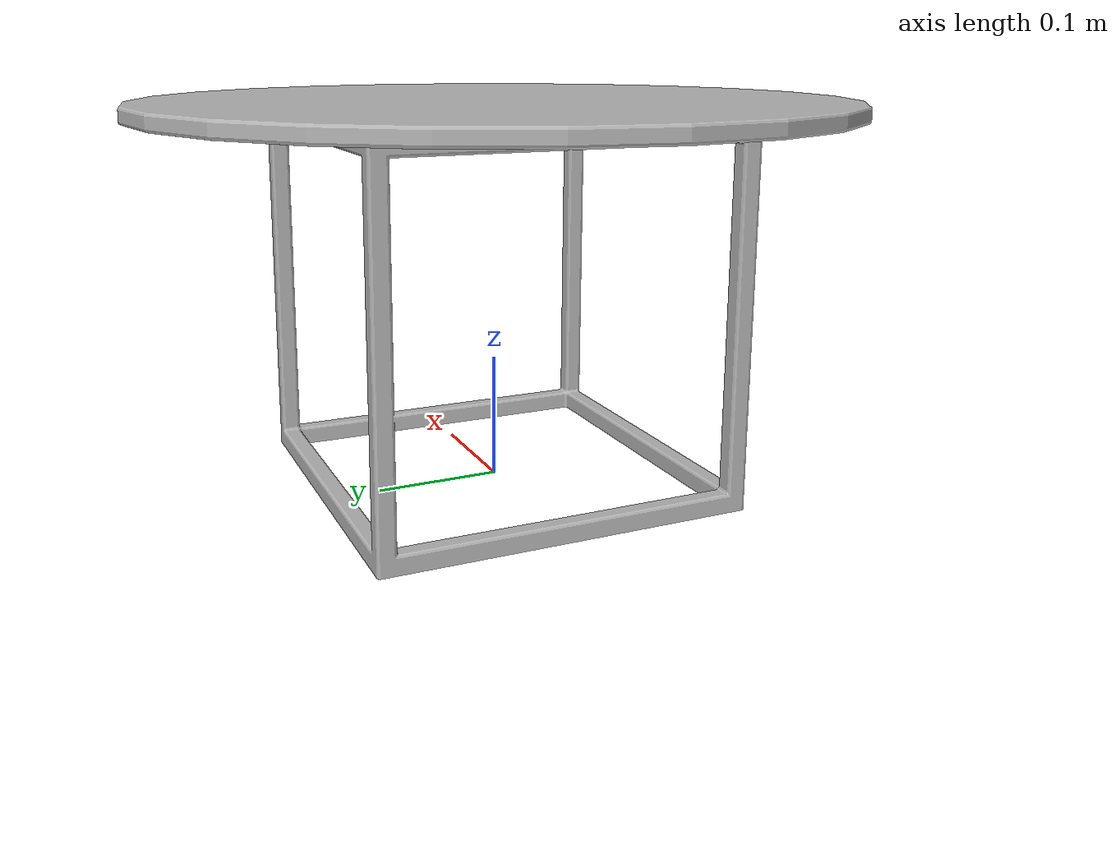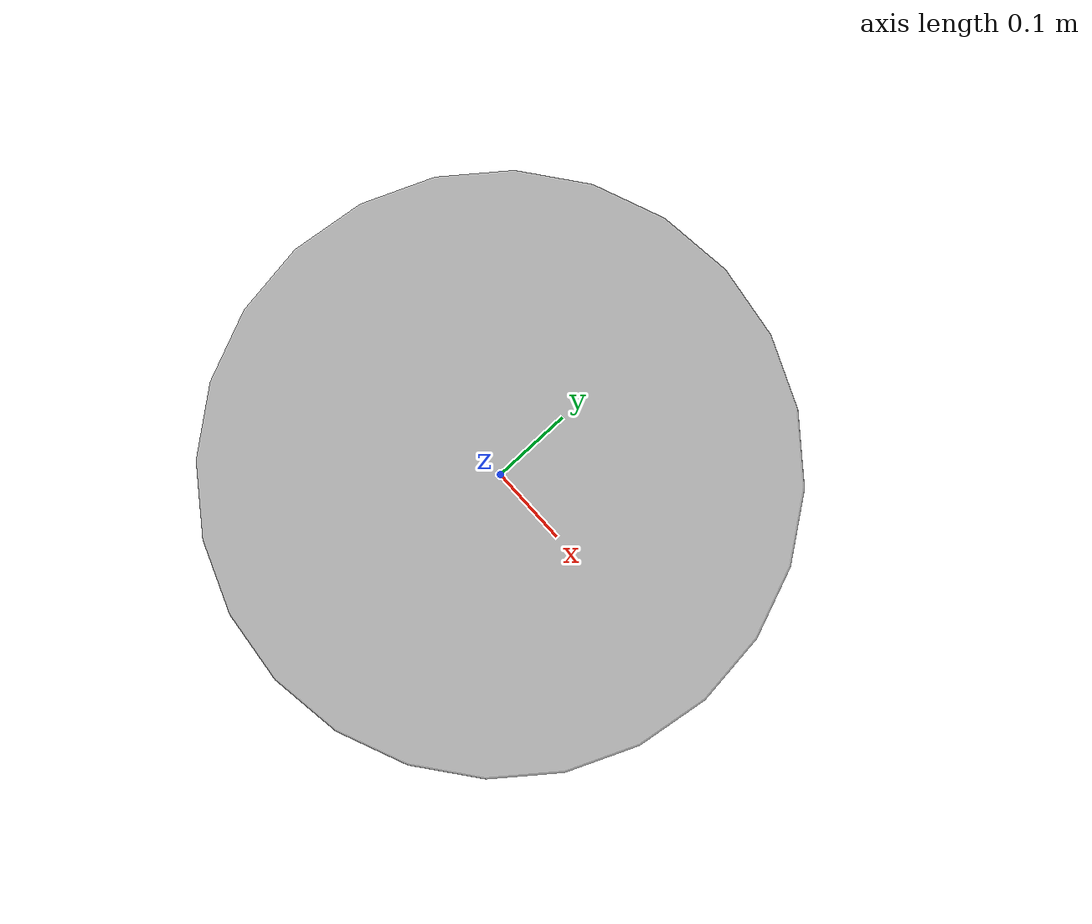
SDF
<?xml version='1.0'?>
<sdf version='1.4'>
  <model name='s__1837'>
    <pose>0 0 0 0 0 0</pose>
    <static>true</static>
    <link name='link'>
      <collision name='collision'>
        <pose>0 0 0 0 0 0</pose>
        <geometry>
          <box>
            <size>0.56 0.56 2</size>
          </box>
        </geometry>
      </collision>
      <visual name='visual'>
        <pose>0 0 0 0 0 0</pose>
        <geometry>
          <mesh><uri>model://s__1837/s__1837.dae</uri></mesh>
        </geometry>
      </visual>
    </link>
  </model>
</sdf>
